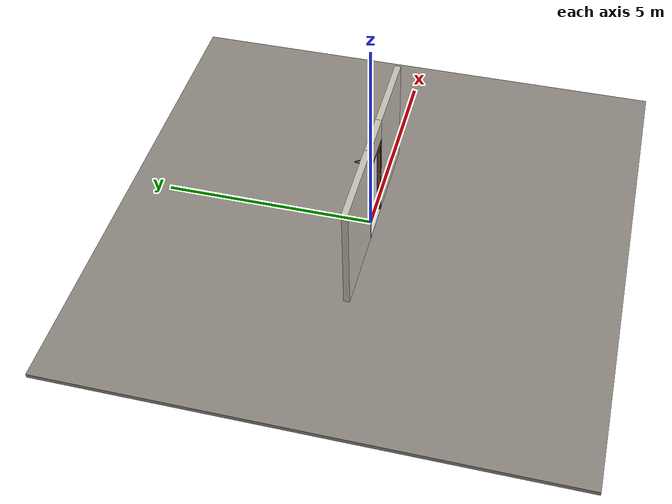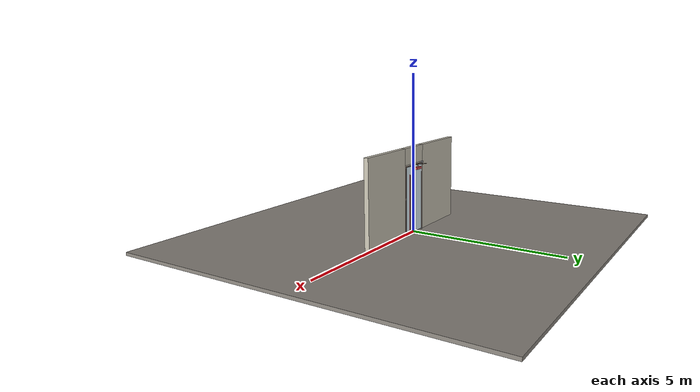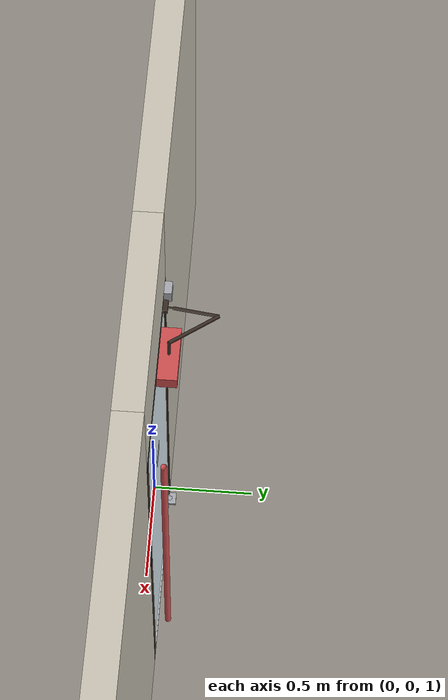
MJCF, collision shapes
<?xml version="1.0" ?>
<mujoco model="db0312_swing_single_full">
  <compiler angle="radian" meshdir="../../hardware" texturedir="../../textures" autolimits="true" inertiafromgeom="false"/>
  <option timestep="0.002" integrator="implicitfast" cone="elliptic" impratio="10" noslip_iterations="3">
    <flag multiccd="enable"/>
  </option>
  <size memory="16M"/>
  <default>
    <geom condim="4" solref="0.005 1" solimp="0.95 0.99 0.001"/>
    <joint solreflimit="0.005 1" solimplimit="0.95 0.99 0.001"/>
    <tendon solreflimit="0.005 1"/>
    <equality solref="0.002 1"/>
  </default>
  <visual>
    <headlight ambient="0.4 0.4 0.4" diffuse="0.7 0.7 0.7" specular="0.2 0.2 0.2"/>
    <quality shadowsize="4096"/>
    <map znear="0.01" zfar="60"/>
  </visual>
  <asset>
    <mesh name="closer_body_fdc4667657" file="closer_body_fdc4667657.obj"/>
    <mesh name="pull_897e207f65" file="pull_897e207f65.obj"/>
    <material name="mat_floor" rgba="0.55 0.53 0.5 1" specular="0.2" shininess="0.15" reflectance="0"/>
    <material name="mat_wall" rgba="0.78 0.76 0.7 1" specular="0.2" shininess="0.1" reflectance="0"/>
    <material name="mat_leaf" rgba="0.85 0.92 0.95 0.25" specular="0.2" shininess="0.95" reflectance="0.1"/>
    <material name="mat_glass_leaf" rgba="0.85 0.92 0.95 0.25" specular="0.2" shininess="0.95" reflectance="0.1"/>
    <material name="mat_patch" rgba="0.75 0.76 0.77 1" specular="0.8" shininess="0.65" reflectance="0.4"/>
    <material name="mat_hinge" rgba="0.65 0.66 0.68 1" specular="0.74" shininess="0.5" reflectance="0.36"/>
    <material name="mat_op_stainless" rgba="0.75 0.76 0.77 1" specular="0.8" shininess="0.65" reflectance="0.4"/>
    <material name="mat_deadbolt" rgba="0.85 0.66 0.3 1" specular="0.8" shininess="0.75" reflectance="0.4"/>
    <material name="mat_frame" rgba="0.22 0.17 0.13 1" specular="0.8" shininess="0.6" reflectance="0.4"/>
    <material name="mat_threshold" rgba="0.8 0.81 0.83 1" specular="0.8" shininess="0.6" reflectance="0.4"/>
    <material name="mat_closer" rgba="0.22 0.17 0.13 1" specular="0.8" shininess="0.6" reflectance="0.4"/>
    <material name="mat_sign" rgba="0.75 0.76 0.77 1" specular="0.8" shininess="0.65" reflectance="0.4"/>
    <texture name="skybox" type="skybox" builtin="gradient" rgb1="0.6 0.7 0.85" rgb2="0.9 0.92 0.95" width="256" height="256"/>
  </asset>
  <worldbody>
    <light name="sun" pos="1.5 -2.5 4" dir="-0.3 0.5 -0.8" directional="true" diffuse="0.8 0.8 0.8" specular="0.3 0.3 0.3" castshadow="true"/>
    <light name="fill" pos="-1.5 2.5 3" dir="0.3 -0.5 -0.7" directional="true" diffuse="0.35 0.35 0.4" castshadow="false"/>
    <camera name="robot_view" pos="0 -2.680813 1.812087" xyaxes="1 0 0 0 0.26963 0.962964" fovy="52"/>
    <camera name="far_view" pos="0 2.594812 1.812087" xyaxes="-1 0 0 0 -0.26963 0.962964" fovy="52"/>
    <camera name="iso" pos="2.004737 -2.258763 2.234138" xyaxes="0.741536 0.670913 0 -0.242917 0.268487 0.932151" fovy="46"/>
    <camera name="detail_handle" pos="0.53 -0.8875 1.296" xyaxes="0.97561 0.219512 0 -0.070934 0.315262 0.94635" fovy="38"/>
    <geom name="floor" type="box" size="6 6 0.05" pos="0 0 -0.05" material="mat_floor" group="0" contype="1" conaffinity="1" friction="0.8 0.005 0.0001" density="2400"/>
    <geom name="wall_left" type="box" size="0.9965 0.0725 1.3735" pos="-1.5035 -0.043 1.3735" material="mat_wall" group="0" contype="1" conaffinity="1" friction="0.6 0.005 0.0001" density="800"/>
    <geom name="wall_right" type="box" size="0.9815 0.0725 1.3735" pos="1.5185 -0.043 1.3735" material="mat_wall" group="0" contype="1" conaffinity="1" friction="0.6 0.005 0.0001" density="800"/>
    <geom name="wall_header" type="box" size="0.522 0.0725 0.2625" pos="0.015 -0.043 2.4845" material="mat_wall" group="0" contype="1" conaffinity="1" friction="0.6 0.005 0.0001" density="800"/>
    <geom name="pivot_bottom_socket" type="box" size="0.035 0.035 0.0125" pos="-0.443 0.0325 0.0025" material="mat_hinge" group="1" contype="0" conaffinity="0" density="7850"/>
    <geom name="pivot_top_bracket" type="box" size="0.035 0.035 0.0355" pos="-0.443 0.0325 2.1865" material="mat_hinge" group="1" contype="0" conaffinity="0" density="7850"/>
    <geom name="leaf_deadbolt_strike_b" type="box" size="0.0155 0.003 0.0005" pos="0.4615 0 1.1375" quat="-0.5 -0.5 0.5 0.5" material="mat_deadbolt" group="1" contype="0" conaffinity="0" density="7800"/>
    <geom name="leaf_deadbolt_strike_l" type="box" size="0.003 0.0155 0.0005" pos="0.4615 0.0125 1.156" quat="-0.5 -0.5 0.5 0.5" material="mat_deadbolt" group="1" contype="0" conaffinity="0" density="7800"/>
    <geom name="leaf_deadbolt_strike_t" type="box" size="0.0155 0.003 0.0005" pos="0.4615 0 1.1745" quat="-0.5 -0.5 0.5 0.5" material="mat_deadbolt" group="1" contype="0" conaffinity="0" density="7800"/>
    <geom name="leaf_deadbolt_strike_r" type="box" size="0.003 0.0155 0.0005" pos="0.4615 -0.0125 1.156" quat="-0.5 -0.5 0.5 0.5" material="mat_deadbolt" group="1" contype="0" conaffinity="0" density="7800"/>
    <geom name="jamb_hinge" type="box" size="0.0225 0.0725 1.0735" pos="-0.4845 -0.043 1.0735" material="mat_frame" group="0" contype="1" conaffinity="1" friction="0.6 0.005 0.0001" density="300"/>
    <geom name="strike_1156_wall_n" type="box" size="0.0375 0.053 0.0155" pos="0.4995 -0.0625 1.156" material="mat_frame" group="0" contype="1" conaffinity="1" friction="0.6 0.005 0.0001" density="300"/>
    <geom name="strike_1156_wall_p" type="box" size="0.0375 0.01 0.0155" pos="0.4995 0.0195 1.156" material="mat_frame" group="0" contype="1" conaffinity="1" friction="0.6 0.005 0.0001" density="300"/>
    <geom name="strike_1156_back" type="box" size="0.0228 0.0095 0.0155" pos="0.5142 0 1.156" material="mat_frame" group="0" contype="1" conaffinity="1" friction="0.6 0.005 0.0001" density="300"/>
    <geom name="jamb_strike_0" type="box" size="0.0375 0.0725 0.57025" pos="0.4995 -0.043 0.57025" material="mat_frame" group="0" contype="1" conaffinity="1" friction="0.6 0.005 0.0001" density="300"/>
    <geom name="jamb_strike_1" type="box" size="0.0375 0.0725 0.48775" pos="0.4995 -0.043 1.65925" material="mat_frame" group="0" contype="1" conaffinity="1" friction="0.6 0.005 0.0001" density="300"/>
    <geom name="jamb_head" type="box" size="0.522 0.0725 0.0225" pos="0.015 -0.043 2.1695" material="mat_frame" group="0" contype="1" conaffinity="1" friction="0.6 0.005 0.0001" density="300"/>
    <geom name="head_stud" type="box" size="0.522 0.0725 0.015" pos="0.015 -0.043 2.207" material="mat_wall" group="0" contype="1" conaffinity="1" friction="0.6 0.005 0.0001" density="500"/>
    <geom name="threshold" type="box" size="0.507 0.0725 0.0065" pos="0 -0.043 0.0065" material="mat_threshold" group="0" contype="1" conaffinity="1" friction="0.5 0.005 0.0001" density="2700"/>
    <geom name="closer_bracket" type="box" size="0.03 0.012 0.014" pos="-0.362 0.0415 2.177" material="mat_closer" group="1" contype="0" conaffinity="0" density="2700"/>
    <site name="approach_point" pos="0 -1.5 0" quat="1 0 0 0" size="0.05" rgba="0.2 0.9 0.2 0.5" group="4"/>
    <site name="goal_point" pos="0 1.5 0" quat="1 0 0 0" size="0.05" rgba="0.2 0.9 0.2 0.5" group="4"/>
    <site name="door_plane_center" pos="0 0 1.0735" quat="1 0 0 0" size="0.02" rgba="0.2 0.9 0.2 0.5" group="4"/>
    <body name="leaf" pos="-0.462 0 0">
      <inertial pos="0.500406 0.009725 1.198627" mass="105.692391" quat="0.520615 0.520667 0.468776 -0.48797" diaginertia="7.614586894 44.723299446 51.929094023"/>
      <joint name="leaf_hinge" type="hinge" axis="0 0 1" pos="0.019 0.0325 0" limited="true" range="0 1.570796" damping="12.268966" frictionloss="1.006049" stiffness="32.289355" springref="-1.956682" armature="0.02"/>
      <geom name="leaf_glass" type="box" size="0.457 0.0225 1.063" pos="0.46 0 1.08" material="mat_glass_leaf" group="0" contype="1" conaffinity="1" friction="0.4 0.005 0.0001" density="1"/>
      <geom name="pivot_bottom" type="cylinder" size="0.014 0.004" pos="0.019 0.0325 0.012" material="mat_hinge" group="1" contype="0" conaffinity="0" density="7850"/>
      <geom name="pivot_top" type="cylinder" size="0.014 0.004" pos="0.019 0.0325 2.147" material="mat_hinge" group="1" contype="0" conaffinity="0" density="7850"/>
      <geom name="leaf_pull_n" type="mesh" mesh="pull_897e207f65" pos="0.812 -0.0225 1.016" quat="0.707107 0.707107 0 0" material="mat_op_stainless" group="1" contype="0" conaffinity="0" density="3000"/>
      <geom name="leaf_pull_col_n" type="capsule" size="0.016 0.88" pos="0.812 -0.0875 1.016" material="mat_op_stainless" group="3" contype="1" conaffinity="1" rgba="0.8 0.3 0.3 0.25" friction="0.7 0.01 0.0001" density="3000"/>
      <geom name="leaf_pull_p" type="mesh" mesh="pull_897e207f65" pos="0.812 0.0225 1.016" quat="-0.707107 0.707107 0 0" material="mat_op_stainless" group="1" contype="0" conaffinity="0" density="3000"/>
      <geom name="leaf_pull_col_p" type="capsule" size="0.016 0.88" pos="0.812 0.0875 1.016" material="mat_op_stainless" group="3" contype="1" conaffinity="1" rgba="0.8 0.3 0.3 0.25" friction="0.7 0.01 0.0001" density="3000"/>
      <geom name="leaf_deadbolt_faceplate" type="box" size="0.0006 0.014 0.0245" pos="0.9164 0 1.156" material="mat_deadbolt" group="1" contype="0" conaffinity="0" density="8500"/>
      <geom name="closer_body" type="mesh" mesh="closer_body_fdc4667657" pos="0.3 0.0225 2.046" quat="-0.707107 0.707107 0 0" material="mat_closer" group="1" contype="0" conaffinity="0" density="2000"/>
      <geom name="closer_body_col" type="box" size="0.145 0.05 0.035" pos="0.3 0.0725 2.046" material="mat_closer" group="3" contype="1" conaffinity="1" rgba="0.8 0.3 0.3 0.25" friction="0.6 0.005 0.0001" density="2000"/>
      <geom name="closer_pinion_shaft" type="cylinder" size="0.008 0.0655" pos="0.3 0.0725 2.1115" material="mat_closer" group="1" contype="0" conaffinity="0" density="2700"/>
      <geom name="sign_push" type="box" size="0.06 0.001 0.03" pos="0.46 -0.0235 1.367" material="mat_sign" group="2" contype="0" conaffinity="0" density="7900"/>
      <geom name="sign_pull" type="box" size="0.06 0.001 0.03" pos="0.46 0.0235 1.367" material="mat_sign" group="2" contype="0" conaffinity="0" density="7900"/>
      <site name="leaf_pull_grip_n" pos="0.812 -0.0875 1.016" quat="1 0 0 0" size="0.012" rgba="0.2 0.9 0.2 0.5" group="4"/>
      <site name="leaf_pull_grip_p" pos="0.812 0.0875 1.016" quat="1 0 0 0" size="0.012" rgba="0.2 0.9 0.2 0.5" group="4"/>
      <site name="leaf_edge_mid" pos="0.917 0 1.063" quat="1 0 0 0" size="0.02" rgba="0.2 0.9 0.2 0.5" group="4"/>
      <body name="leaf_deadbolt" pos="0.917 0 1.156">
        <inertial pos="-0.0023 0 0" mass="0.18836" quat="0 0 0.707107 0.707107" diaginertia="0.000013829 0.000052194 0.000057986"/>
        <geom name="leaf_deadbolt_box" type="box" size="0.0277 0.008 0.0125" pos="-0.0023 0 0" material="mat_deadbolt" group="0" contype="1" conaffinity="1" friction="0.3 0.005 0.0001" density="8500"/>
      </body>
      <body name="closer_arm_main" pos="0.3 0.0725 2.177" quat="0.454107 0 0 0.890947">
        <inertial pos="0.14 0 0" mass="0.12096" quat="1 0 0 0" diaginertia="0.000003588 0.00079128 0.000792852"/>
        <joint name="closer_pinion" type="hinge" axis="0 0 1" limited="false" damping="0.01" armature="0.002"/>
        <geom name="closer_arm_main_geom" type="box" size="0.14 0.008 0.005" pos="0.14 0 0" material="mat_closer" group="1" contype="0" conaffinity="0" density="2700"/>
        <body name="closer_arm_fore" pos="0.28 0 0" quat="-0.373215 0 0 -0.927745">
          <inertial pos="0.128088 0 0" mass="0.076531" quat="1 0 0 0" diaginertia="0.000001771 0.000437665 0.000438201"/>
          <joint name="closer_elbow" type="hinge" axis="0 0 1" limited="false" damping="0.01" armature="0.002"/>
          <geom name="closer_arm_fore_geom" type="box" size="0.1125 0.007 0.004" pos="0.1125 0 0" material="mat_closer" group="1" contype="0" conaffinity="0" density="2700"/>
          <geom name="closer_fore_neck" type="box" size="0.0175 0.003 0.003" pos="0.2425 0 0" material="mat_closer" group="1" contype="0" conaffinity="0" density="2700"/>
          <geom name="closer_fore_pivot" type="cylinder" size="0.005 0.012" pos="0.26 0 0" material="mat_closer" group="1" contype="0" conaffinity="0" density="2700"/>
        </body>
      </body>
    </body>
  </worldbody>
  <equality>
    <connect name="closer_arm_connect" body1="closer_arm_fore" body2="world" anchor="0.26 0 0" active="true"/>
  </equality>
  <contact>
    <exclude body1="closer_arm_main" body2="leaf"/>
    <exclude body1="closer_arm_fore" body2="leaf"/>
    <exclude body1="closer_arm_main" body2="closer_arm_fore"/>
  </contact>
  <sensor>
    <jointpos name="leaf_hinge_pos" joint="leaf_hinge"/>
    <jointvel name="leaf_hinge_vel" joint="leaf_hinge"/>
  </sensor>
</mujoco>
